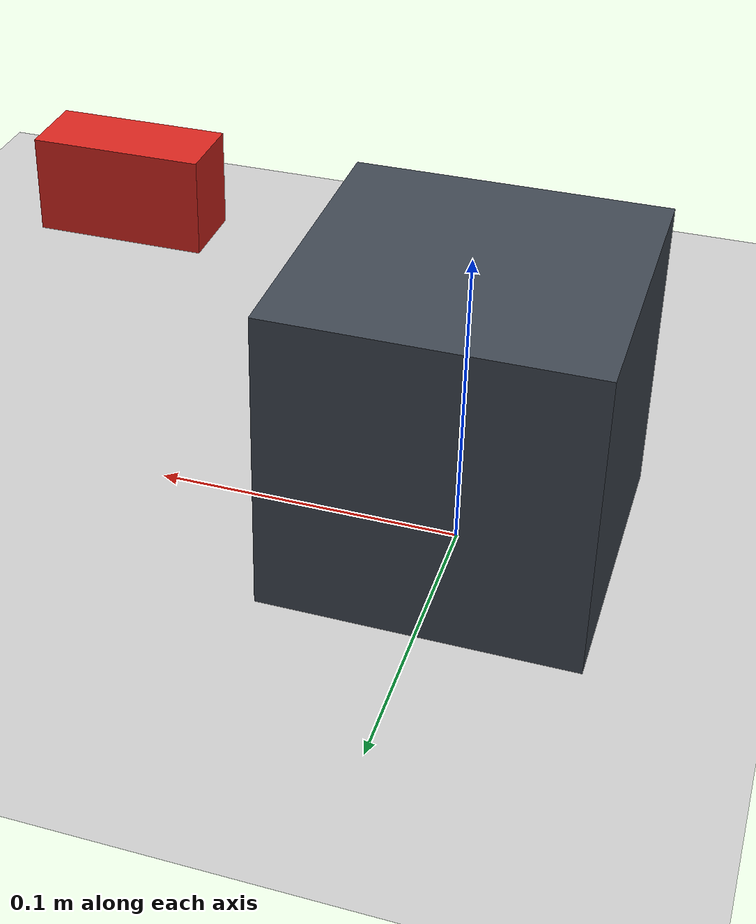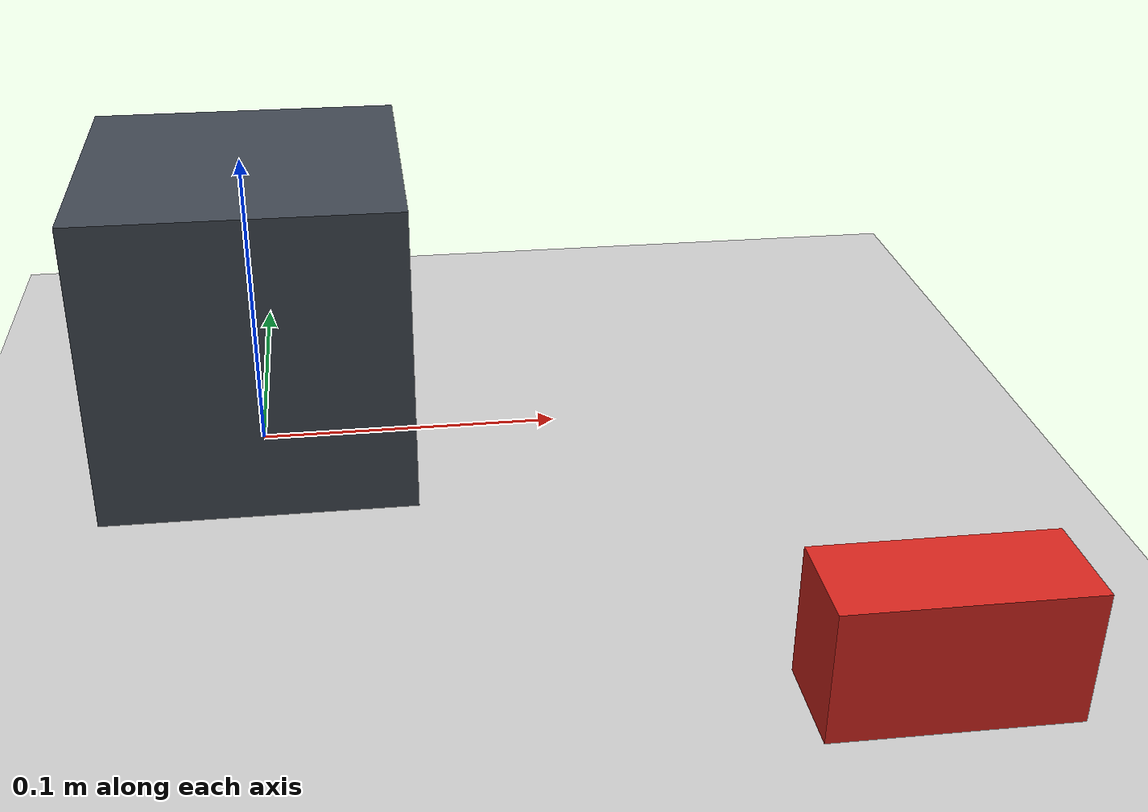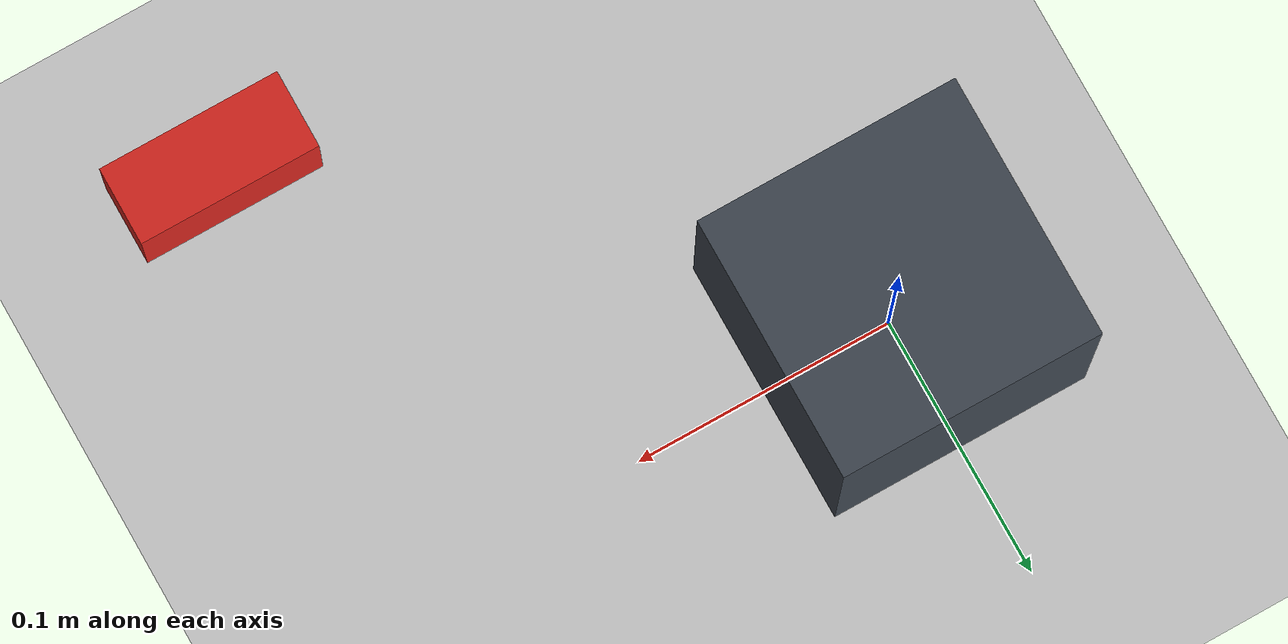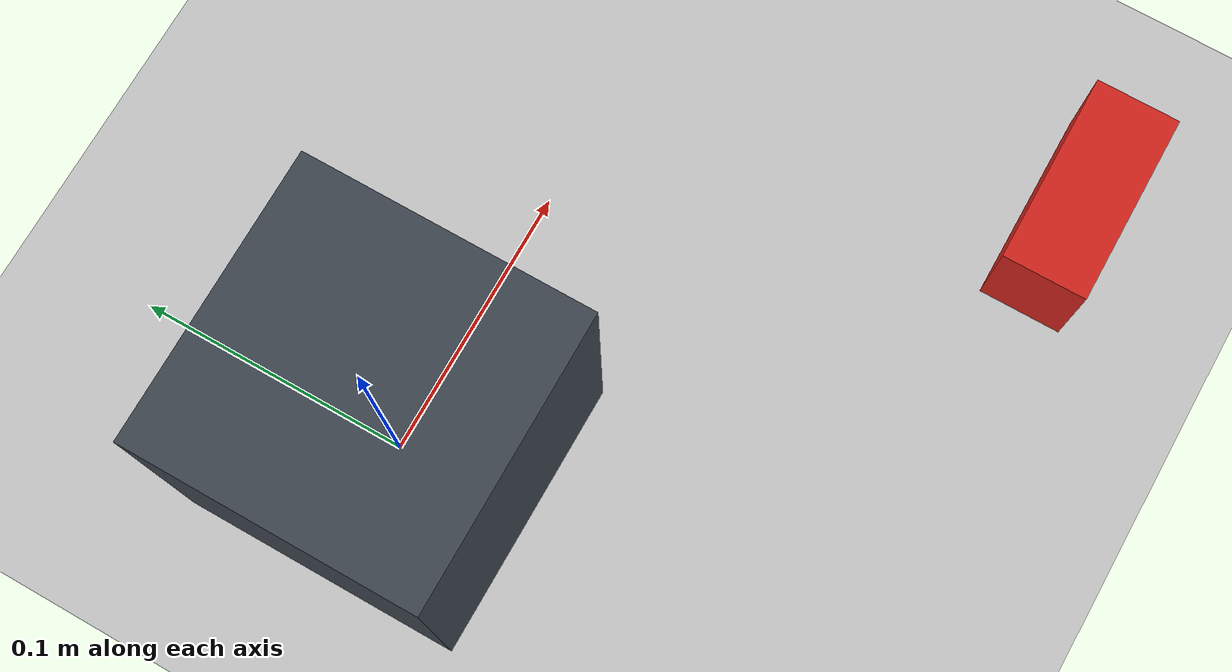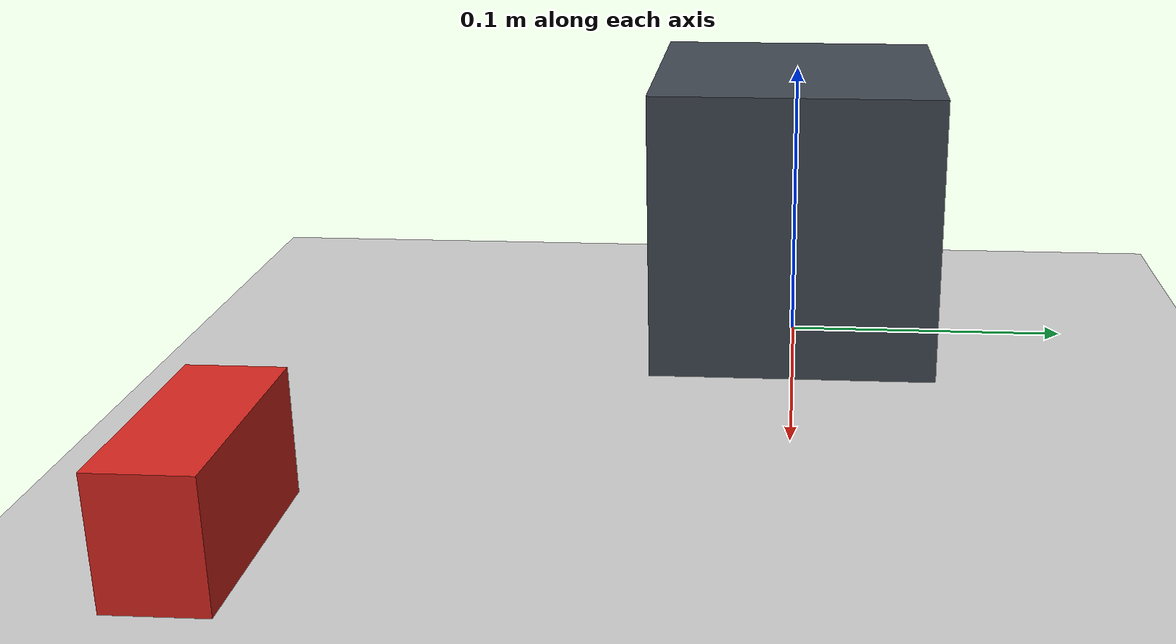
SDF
<?xml version='1.0' encoding='utf-8'?>
<sdf version="1.6">
  <world name="grasp_test">
    <physics name="half_ms" type="ignored">
      <max_step_size>0.0005</max_step_size>
      <real_time_factor>1.0</real_time_factor>
    </physics>
    <plugin filename="gz-sim-physics-system" name="gz::sim::systems::Physics">
    </plugin>
    <plugin filename="gz-sim-user-commands-system" name="gz::sim::systems::UserCommands">
    </plugin>
    <plugin filename="gz-sim-scene-broadcaster-system" name="gz::sim::systems::SceneBroadcaster">
    </plugin>
    <plugin filename="gz-sim-contact-system" name="gz::sim::systems::Contact">
    </plugin>
    <light type="directional" name="sun">
      <cast_shadows>true</cast_shadows>
      <pose>0 0 10 0 0 0</pose>
      <diffuse>0.8 0.8 0.8 1</diffuse>
      <specular>0.2 0.2 0.2 1</specular>
      <attenuation>
        <range>1000</range>
        <constant>0.9</constant>
        <linear>0.01</linear>
        <quadratic>0.001</quadratic>
      </attenuation>
      <direction>-0.5 0.1 -0.9</direction>
    </light>
    <model name="ground_plane">
      <static>true</static>
      <link name="link">
        <collision name="collision">
          <geometry>
            <plane>
              <normal>0 0 1</normal>
              <size>100 100</size>
            </plane>
          </geometry>
        </collision>
        <visual name="visual">
          <geometry>
            <plane>
              <normal>0 0 1</normal>
              <size>100 100</size>
            </plane>
          </geometry>
          <material>
            <ambient>0.8 0.8 0.8 1</ambient>
            <diffuse>0.8 0.8 0.8 1</diffuse>
            <specular>0.8 0.8 0.8 1</specular>
          </material>
        </visual>
      </link>
    </model>
    <scene>
      <ambient>0.65 0.65 0.65 1</ambient>
      <background>0.22 0.25 0.28 1</background>
      <shadows>true</shadows>
    </scene>
    <gui fullscreen="false">
      <camera name="overview">
        <pose>0.85 -0.85 0.8 0 0.65 2.25</pose>
      </camera>
    </gui>
    <model name="robot_pedestal">
      <static>true</static>
      <pose>0 0 0.05 0 0 0</pose>
      <link name="link">
        <collision name="collision">
          <geometry>
            <box>
              <size>0.1 0.1 0.1</size>
            </box>
          </geometry>
          <surface>
            <friction>
              <ode>
                <mu>1.0</mu>
                <mu2>1.0</mu2>
              </ode>
            </friction>
          </surface>
        </collision>
        <visual name="visual">
          <geometry>
            <box>
              <size>0.1 0.1 0.1</size>
            </box>
          </geometry>
          <material>
            <ambient>0.25 0.28 0.32 1</ambient>
            <diffuse>0.25 0.28 0.32 1</diffuse>
          </material>
        </visual>
      </link>
    </model>
    <model name="box_A">
      <static>false</static>
      <pose>0.18 -0.16 0.02 0 0 0</pose>
      <link name="link">
        <inertial>
          <mass>0.04</mass>
          <inertia>
            <ixx>8.333333333333334e-06</ixx>
            <iyy>2.166666666666667e-05</iyy>
            <izz>1.9333333333333337e-05</izz>
            <ixy>0</ixy>
            <ixz>0</ixz>
            <iyz>0</iyz>
          </inertia>
        </inertial>
        <collision name="collision">
          <geometry>
            <box>
              <size>0.07 0.03 0.04</size>
            </box>
          </geometry>
          <surface>
            <friction>
              <ode>
                <mu>1.0</mu>
                <mu2>1.0</mu2>
              </ode>
            </friction>
          <contact><collide_bitmask>1</collide_bitmask></contact></surface>
        </collision>
        <visual name="visual">
          <geometry>
            <box>
              <size>0.07 0.03 0.04</size>
            </box>
          </geometry>
          <material>
            <ambient>0.85 0.15 0.12 1</ambient>
            <diffuse>0.85 0.15 0.12 1</diffuse>
          </material>
        </visual>
      </link>
    </model>
    </world>
</sdf>
